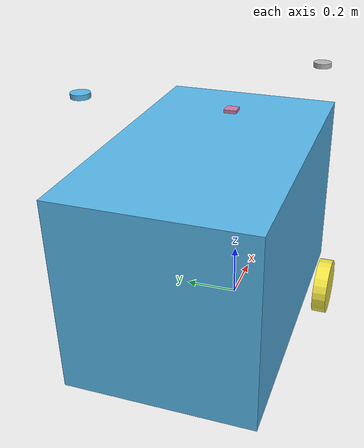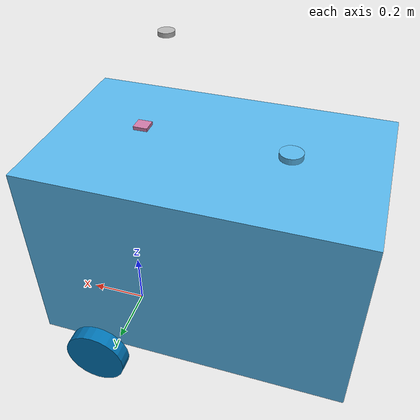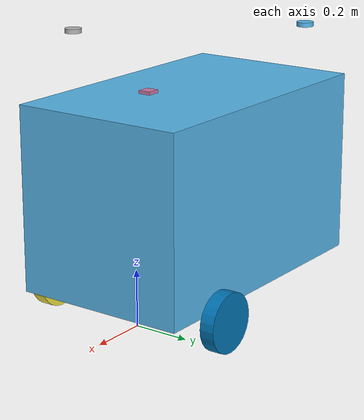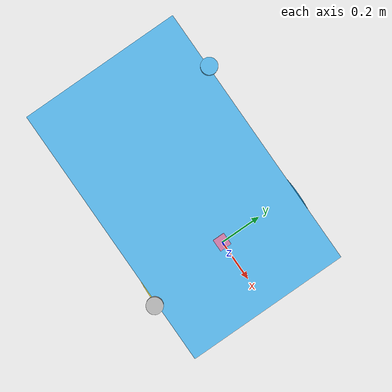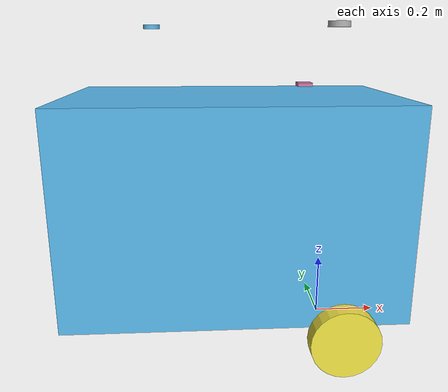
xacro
<?xml version="1.0"?>

<robot name="maverick" xmlns:xacro="http://www.ros.org/wiki/xacro">
    <!-- Args -->
    <xacro:arg name="base_frame_id" default="base_link"/>
    <xacro:arg name="imu_name" default="imu"/>
    <xacro:arg name="gnss_a_name" default="gnss_a"/>
    <xacro:arg name="gnss_b_name" default="gnss_b"/>

    <!-- Includes -->
    <xacro:include filename="$(find maverick_description)/urdf/constants.xacro"/>

    <!-- Base link -->
    <link name="$(arg base_frame_id)" />

    <!-- Chassis -->
    <xacro:include filename="$(find common_description)/urdf/physics/inertia.xacro"/>

    <link name="chassis_link">
        <xacro:box_inertia mass="${chassis_mass_kg}" length="${chassis_length_m}" width="${chassis_width_m}" height="${chassis_height_m}">
            <origin xyz="0 0 ${chassis_height_m / 2}" rpy="0 0 0" />
        </xacro:box_inertia>

        <visual>
            <origin xyz="0 0 ${chassis_height_m / 2}" rpy="0 0 0" />
            <geometry>
                <box size="${chassis_length_m} ${chassis_width_m} ${chassis_height_m}" />
            </geometry>
        </visual>

        <collision>
            <origin xyz="0 0 ${chassis_height_m / 2}" rpy="0 0 0" />
            <geometry>
                <box size="${chassis_length_m} ${chassis_width_m} ${chassis_height_m}" />
            </geometry>
        </collision>
    </link>

    <joint name="chassis_joint" type="fixed">
        <origin xyz="${base_frame_to_chassis_x_offset_m} 0 ${base_frame_to_chassis_z_offset_m}" rpy="0 0 0" />
        <parent link="$(arg base_frame_id)" />
        <child link="chassis_link" />
    </joint>

    <!-- Caster -->
    <xacro:include filename="$(find common_description)/urdf/wheel/caster.xacro"/>
    <xacro:caster name="caster" mass="${caster_mass_kg}" radius="${caster_radius_m}">
        <origin xyz="${base_frame_to_caster_x_offset_m} 0 ${caster_radius_m}" rpy="0 0 0" />
    </xacro:caster>

    <!-- Wheels -->
    <xacro:include filename="$(find common_description)/urdf/wheel/wheel.xacro"/>
    <xacro:wheel name="right_wheel" mass="${wheel_mass_kg}" radius="${wheel_radius_m}" width="${wheel_width_m}">
        <origin xyz="0 -${track_width_m / 2} ${wheel_radius_m}" rpy="0 0 0" />
    </xacro:wheel>
    <xacro:wheel name="left_wheel" mass="${wheel_mass_kg}" radius="${wheel_radius_m}" width="${wheel_width_m}">
        <origin xyz="0 ${track_width_m/2} ${wheel_radius_m}" rpy="0 0 0" />
    </xacro:wheel>

    <!-- IMU -->
    <xacro:include filename="$(find common_description)/urdf/sensor/vn300.xacro" />
    <xacro:vn300 name="$(arg imu_name)" parent="$(arg base_frame_id)">
        <origin xyz="${base_frame_to_imu_x_offset_m} ${base_frame_to_imu_y_offset_m} ${base_frame_to_imu_z_offset_m}" rpy="0 0 0" />
    </xacro:vn300>

    <!-- GNSS -->
    <xacro:include filename="$(find common_description)/urdf/sensor/calian_tw2712.xacro" />

    <xacro:calian_tw2712 name="$(arg gnss_a_name)" parent="$(arg imu_name)_base_link">
        <origin xyz="${imu_to_gnss_a_x_offset_m} ${imu_to_gnss_a_y_offset_m} ${imu_to_gnss_a_z_offset_m}" rpy="0 0 0" />
    </xacro:calian_tw2712>

    <!-- GNSS B -->
    <xacro:calian_tw2712 name="$(arg gnss_b_name)" parent="$(arg gnss_a_name)_base_link">
        <origin xyz="${gnss_a_to_gnss_b_x_offset_m} ${gnss_a_to_gnss_b_y_offset_m} ${gnss_a_to_gnss_b_z_offset_m}" rpy="0 0 0" />
    </xacro:calian_tw2712>
</robot>

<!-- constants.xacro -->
<robot xmlns:xacro="http://ros.org/wiki/xacro" name="constants">
    <!-- Chassis Constants -->
    <xacro:property name="chassis_length_m" value="1.019" />
    <xacro:property name="chassis_width_m" value="0.616" />
    <xacro:property name="chassis_height_m" value="0.643" />
    <xacro:property name="base_frame_to_chassis_x_offset_m" value="-0.302" />
    <xacro:property name="base_frame_to_chassis_z_offset_m" value="0.12" />
    <xacro:property name="chassis_mass_kg" value="20" />

    <!-- Wheel Constants -->
    <xacro:property name="wheel_radius_m" value="0.102" />
    <xacro:property name="wheel_width_m" value="0.05" />
    <xacro:property name="wheel_mass_kg" value="1" />
    <xacro:property name="track_width_m" value="0.711" />

    <!-- Caster Constants -->
    <xacro:property name="caster_radius_m" value="0.06" />
    <xacro:property name="caster_mass_kg" value="1" />
    <xacro:property name="base_frame_to_caster_x_offset_m" value="-0.631" />

    <!-- IMU Constants -->
    <xacro:property name="base_frame_to_imu_x_offset_m" value="-0.073"/>
    <xacro:property name="base_frame_to_imu_y_offset_m" value="0.0"/>
    <xacro:property name="base_frame_to_imu_z_offset_m" value="0.789"/>

    <!-- GNSS A Constants -->
    <xacro:property name="imu_to_gnss_a_x_offset_m" value="0.0270"/>
    <xacro:property name="imu_to_gnss_a_y_offset_m" value="-0.291"/>
    <xacro:property name="imu_to_gnss_a_z_offset_m" value="0.171"/>

    <!-- GNSS B Constants -->
    <xacro:property name="gnss_a_to_gnss_b_x_offset_m" value="-0.524"/>
    <xacro:property name="gnss_a_to_gnss_b_y_offset_m" value="0.576"/>
    <xacro:property name="gnss_a_to_gnss_b_z_offset_m" value="0.006"/>
</robot>

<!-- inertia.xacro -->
<robot xmlns:xacro="http://ros.org/wiki/xacro" name="inertia">
    <!-- Brief: Inertial property of a constant density box -->
    <!-- Param mass: mass of the link -->
    <!-- Param length: length of the link -->
    <!-- Param width: width of the link -->
    <!-- Param height: height of the object -->
    <!-- Param origin: location of the inertia relative to the link's origin -->
    <xacro:macro name="box_inertia" params="mass length width height *origin">
        <inertial>
            <xacro:insert_block name="origin" />
            <mass value="${mass}"/>
            <inertia ixx="${(mass/12) * (height**2 + width**2)}" ixy="0.0" ixz="0.0"
                    iyy="${(mass/12) * (height**2 + length**2)}" iyz="0.0"
                    izz="${(mass/12) * (length**2 + width**2)}"/>
        </inertial>
    </xacro:macro>

    <!-- Brief: Inertial property of a constant density cylinder -->
    <!-- Param mass: mass of the link -->
    <!-- Param radius: radius of the link -->
    <!-- Param height: height of the link -->
    <!-- Param origin: location of the inertia relative to the link's origin -->
    <xacro:macro name="cylinder_inertia" params="mass radius height *origin">
        <inertial>
            <xacro:insert_block name="origin" />
            <mass value="${mass}"/>
            <inertia ixx="${(mass/12) * (3*radius**2 + height**2)}" ixy = "0" ixz = "0"
                    iyy="${(mass/2) * (radius**2)}" iyz = "0"
                    izz="${(mass/12) * (3*radius**2 + height**2)}"/>
        </inertial>
    </xacro:macro>

    <!-- Brief: Inertial property of a constant density sphere -->
    <!-- Param mass: mass of the link -->
    <!-- Param radius: radius of the link -->
    <!-- Param origin: location of the inertia relative to the link's origin -->
    <xacro:macro name="sphere_inertia" params="mass radius *origin">
        <inertial>
            <xacro:insert_block name="origin" />
            <mass value="${mass}"/>
            <inertia ixx="${(2/5) * mass * radius**2}" ixy="0.0" ixz="0.0"
                    iyy="${(2/5) * mass * radius**2}" iyz="0.0"
                    izz="${(2/5) * mass * radius**2}"/>
        </inertial>
    </xacro:macro>
</robot>

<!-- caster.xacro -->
<!-- Brief: A caster wheel with zero friction -->
<!-- Shape, Collision, Inertia: Sphere with relevant collision and constant inertia -->
<!-- Mounting Location: center of the sphere -->
<!-- Joint Type: fixed -->
<!-- Param name: the name of the caster -->
<!-- Param mass: mass of the caster -->
<!-- Param radius: radius of the caster -->
<!-- Param parent: name of the parent link, defaulted to base_link -->
<!-- Param joint_origin: location of the caster relative to parent link -->
<robot xmlns:xacro="http://ros.org/wiki/xacro" name="caster">
    <xacro:macro name="caster" params="name mass radius parent:=base_link *joint_origin">
        <!-- Includes -->
        <xacro:include filename="$(find common_description)/urdf/physics/inertia.xacro"/>

        <!-- Caster link -->
        <link name="${name}_link">
            <xacro:sphere_inertia mass="${mass}" radius="${radius}">
                <origin xyz="0 0 0" rpy="0 0 0" />
            </xacro:sphere_inertia>

            <visual>
                <origin xyz="0 0 0" rpy="0 0 0" />
                <geometry>
                    <sphere radius="${radius}" />
                </geometry>
            </visual>

            <collision>
                <origin xyz="0 0 0" rpy="0 0 0" />
                <geometry>
                    <sphere radius="${radius}"/>
                </geometry>
                <surface>
                    <friction>
                        <ode>
                            <mu>0.0</mu>
                            <mu2>0.0</mu2>
                        </ode>
                    </friction>
                </surface>
            </collision>
        </link>

        <joint name="${name}_joint" type="fixed">
            <xacro:insert_block name="joint_origin" />
            <parent link="${parent}" />
            <child link="${name}_link" />
        </joint>
    </xacro:macro>
</robot>

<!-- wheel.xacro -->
<!-- Brief: Powered robot wheel -->
<!-- Shape, Collision, Inertia: Cylinder with relevant collision and constant inertia -->
<!-- Mounting Location: Center of cylinder -->
<!-- Joint Type: continuous -->
<!-- Param name: the name of the wheel -->
<!-- Param mass: mass of the wheel -->
<!-- Param radius: radius of the wheel -->
<!-- Param width: width of the wheel -->
<!-- Param parent: name of the parent link, defaulted to base_link -->
<!-- Param joint_origin: location of the wheel relative to parent link -->
<robot xmlns:xacro="http://ros.org/wiki/xacro" name="wheel">
    <xacro:macro name="wheel" params="name mass radius width parent:=base_link *joint_origin">
        <!-- Includes -->
        <xacro:include filename="$(find common_description)/urdf/physics/inertia.xacro"/>

        <!-- Wheel link -->
        <link name="${name}_link">
            <xacro:cylinder_inertia mass="${mass}" radius="${radius}" height="${width}">
                <origin xyz="0 0 0" rpy="0 0 0" />
            </xacro:cylinder_inertia>

            <visual>
                <origin xyz="0 0 0" rpy="0 ${pi/2} ${pi/2}" />
                <geometry>
                    <cylinder radius="${radius}" length="${width}" />
                </geometry>
            </visual>

            <collision>
                <origin xyz="0 0 0" rpy="0 ${pi/2} ${pi/2}" />
                <geometry>
                    <cylinder radius="${radius}" length="${width}" />
                </geometry>
            </collision>
        </link>

        <joint name="${name}_joint" type="continuous">
            <xacro:insert_block name="joint_origin" />
            <parent link="${parent}" />
            <child link="${name}_link" />
            <axis xyz="0 1 0" rpy="0 0 0" />
            <limit effort="1000" velocity="1000"/>
            <dynamics damping="0.0001"/>
        </joint>
    </xacro:macro>
</robot>

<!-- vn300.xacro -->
<!-- Brief: VectorNav VN-300 Rugged Dual GNSS/INS -->
<!-- Dimensions: 45 x 44 x 11 mm (length x width x height) -->
<!-- Mass: 30g -->
<!-- Mounting Location: Bottom center of housing -->
<!-- Joint Type: fixed -->
<!-- Note: GNSS antennas (ports A and B) connect to external antennas modeled separately -->
<!-- Param name: name of the sensor -->
<!-- Param parent: name of the parent link, defaulted to base_link -->
<!-- Param joint_origin: location of bottom center of housing relative to parent link -->
<robot xmlns:xacro="http://ros.org/wiki/xacro" name="vn300">
    <xacro:macro name="vn300" params="name parent:=base_link *joint_origin">
        <!-- Includes -->
        <xacro:include filename="$(find common_description)/urdf/physics/inertia.xacro"/>

        <!-- VN-300 Rugged dimensions -->
        <xacro:property name="vn300_mass" value="0.030"/>
        <xacro:property name="vn300_length" value="0.0450"/>
        <xacro:property name="vn300_width" value="0.0440"/>
        <xacro:property name="vn300_height" value="0.0110"/>

        <!-- Base link -->
        <link name="${name}_base_link" />

        <joint name="${name}_base_joint" type="fixed">
            <xacro:insert_block name="joint_origin" />
            <parent link="${parent}" />
            <child link="${name}_base_link" />
        </joint>

        <!-- IMU link -->
        <link name="${name}_link">
            <xacro:box_inertia mass="${vn300_mass}" length="${vn300_length}" width="${vn300_width}" height="${vn300_height}">
                <origin xyz="0 0 0" rpy="0 0 0" />
            </xacro:box_inertia>

            <visual>
                <origin xyz="0 0 0" rpy="0 0 0" />
                <geometry>
                    <box size="${vn300_length} ${vn300_width} ${vn300_height}" />
                </geometry>
            </visual>

            <collision>
                <origin xyz="0 0 0" rpy="0 0 0" />
                <geometry>
                    <box size="${vn300_length} ${vn300_width} ${vn300_height}" />
                </geometry>
            </collision>
        </link>

        <joint name="${name}_joint" type="fixed">
            <origin xyz="0 0 ${vn300_height / 2}" rpy="0 0 0" />
            <parent link="${name}_base_link" />
            <child link="${name}_link" />
        </joint>
    </xacro:macro>
</robot>

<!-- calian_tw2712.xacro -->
<!-- Brief: Calian TW2712 single-band GNSS antenna -->
<!-- Dimensions: 57.0mm diameter x 15.0mm height (cylindrical) -->
<!-- Mass: 110g (excluding cable) -->
<!-- Mounting Location: ARP (Antenna Reference Point) at bottom center of housing -->
<!-- Phase Center Offset from ARP: not published in datasheet — set to 0, update if calibration data available -->
<!-- Joint Type: fixed -->
<!-- Param name: name of the antenna -->
<!-- Param parent: name of the parent link, defaulted to base_link -->
<!-- Param joint_origin: location of ARP relative to parent link -->
<robot xmlns:xacro="http://ros.org/wiki/xacro" name="calian_tw2712">
    <xacro:macro name="calian_tw2712" params="name parent:=base_link *joint_origin">
        <!-- Includes -->
        <xacro:include filename="$(find common_description)/urdf/physics/inertia.xacro"/>

        <!-- TW2712 dimensions -->
        <xacro:property name="tw2712_mass" value="0.110"/>
        <xacro:property name="tw2712_radius" value="0.0285"/>
        <xacro:property name="tw2712_height" value="0.0150"/>
        <xacro:property name="tw2712_phase_center_z" value="0.0"/>

        <!-- Base link -->
        <link name="${name}_base_link">
            <xacro:cylinder_inertia mass="${tw2712_mass}" radius="${tw2712_radius}" height="${tw2712_height}">
                <origin xyz="0 0 ${tw2712_height / 2}" rpy="0 0 0" />
            </xacro:cylinder_inertia>

            <visual>
                <origin xyz="0 0 ${tw2712_height / 2}" rpy="0 0 0" />
                <geometry>
                    <cylinder radius="${tw2712_radius}" length="${tw2712_height}" />
                </geometry>
            </visual>

            <collision>
                <origin xyz="0 0 ${tw2712_height / 2}" rpy="0 0 0" />
                <geometry>
                    <cylinder radius="${tw2712_radius}" length="${tw2712_height}" />
                </geometry>
            </collision>
        </link>

        <joint name="${name}_base_joint" type="fixed">
            <xacro:insert_block name="joint_origin" />
            <parent link="${parent}" />
            <child link="${name}_base_link" />
        </joint>

        <!-- GPS link (L1 band phase center) -->
        <link name="${name}_link" />

        <joint name="${name}_joint" type="fixed">
            <origin xyz="0 0 ${tw2712_phase_center_z}" rpy="0 0 0" />
            <parent link="${name}_base_link" />
            <child link="${name}_link" />
        </joint>
    </xacro:macro>
</robot>
